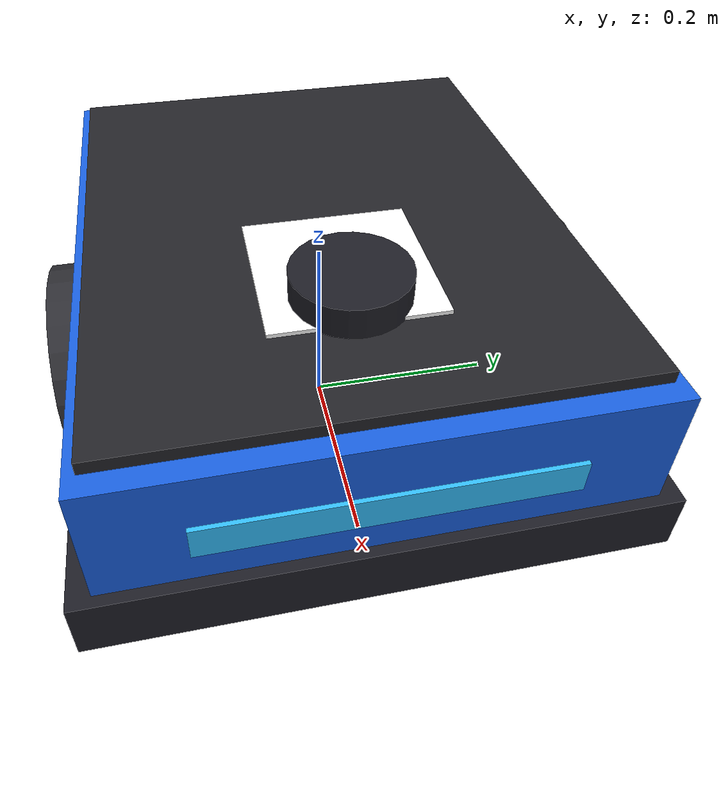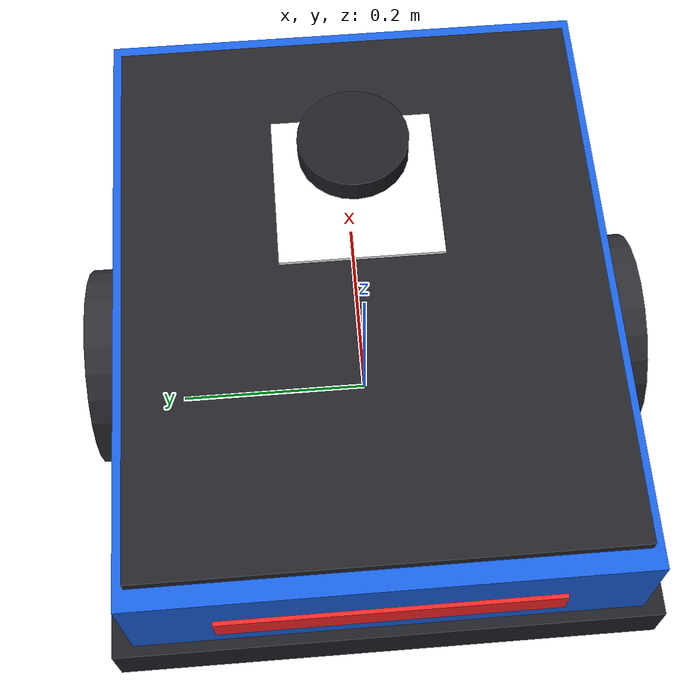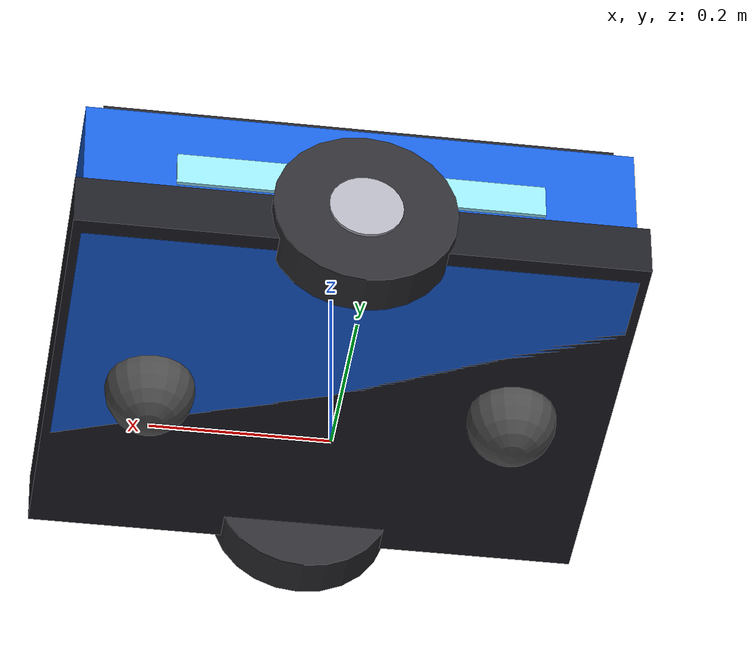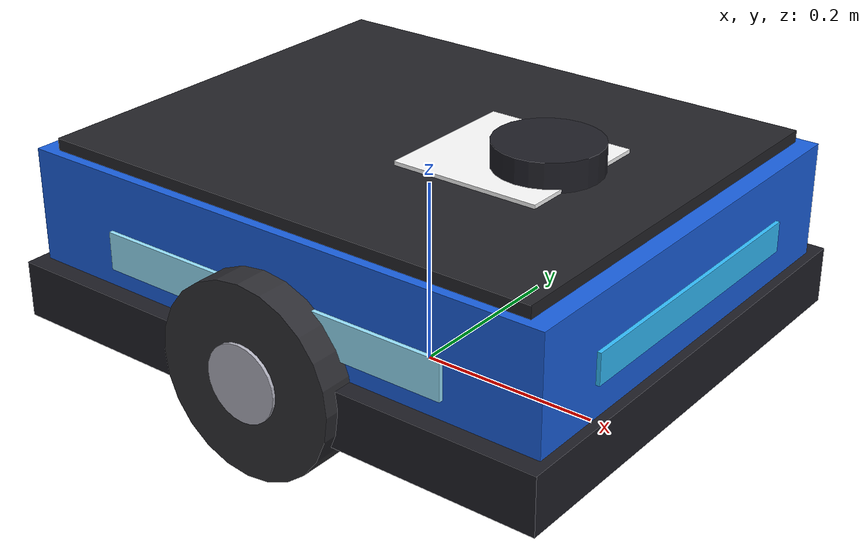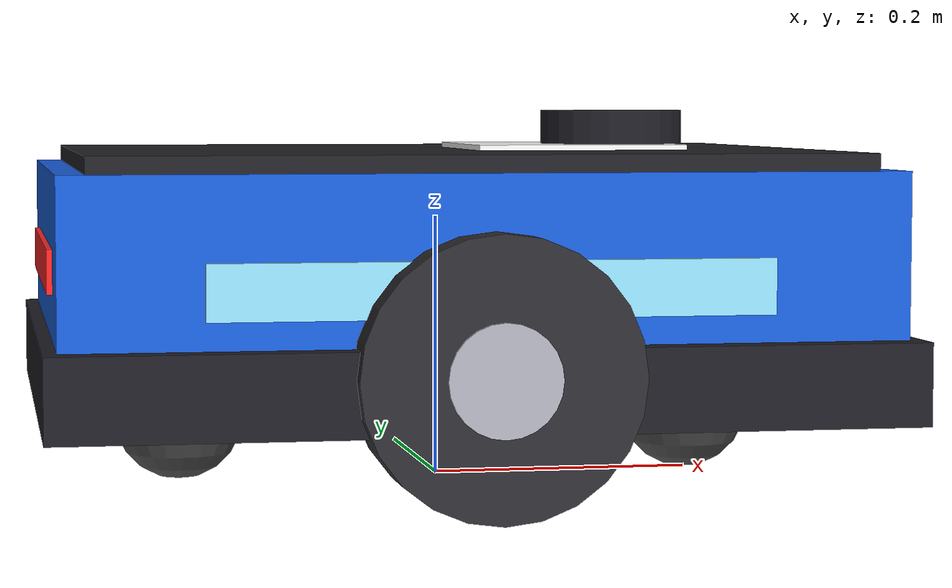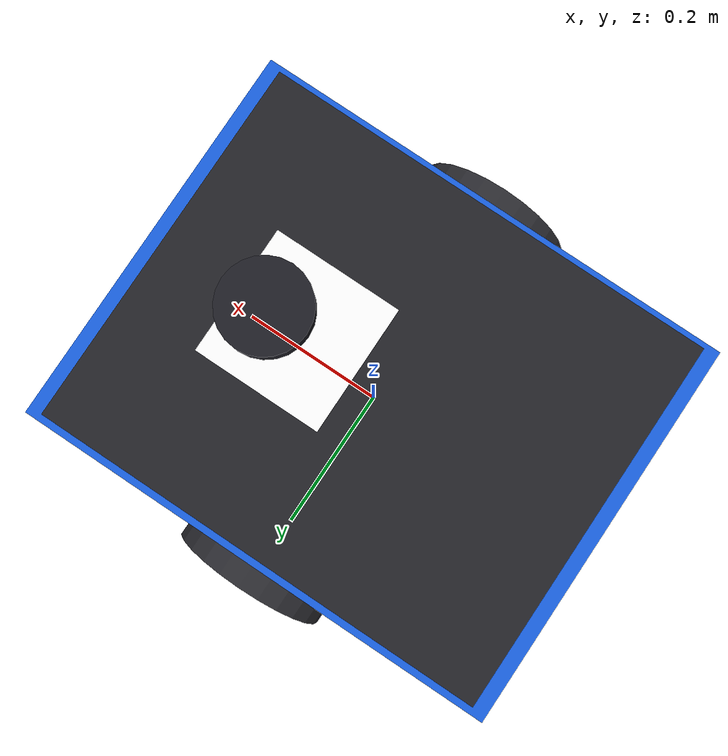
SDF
<?xml version="1.0"?>
<sdf version="1.9">
  <model name="amr_blue">
    <link name="base_link">
      <pose>0 0 0.15 0 0 0</pose>
      <inertial>
        <mass>15.0</mass>
        <inertia><ixx>0.3625</ixx><iyy>0.5</iyy><izz>0.7625</izz><ixy>0</ixy><ixz>0</ixz><iyz>0</iyz></inertia>
      </inertial>
      <collision name="chassis_collision">
        <geometry><box><size>0.60 0.50 0.20</size></box></geometry>
      </collision>

      <!-- Main Chassis Body — BLUE -->
      <visual name="chassis_main">
        <geometry><box><size>0.60 0.48 0.18</size></box></geometry>
        <material>
          <ambient>0.05 0.25 0.70 1.0</ambient>
          <diffuse>0.10 0.38 0.88 1.0</diffuse>
          <specular>0.4 0.4 0.5 1.0</specular>
        </material>
      </visual>

      <!-- Top Cargo Deck (Black Rubber) -->
      <visual name="top_deck">
        <pose>0 0 0.095 0 0 0</pose>
        <geometry><box><size>0.56 0.46 0.015</size></box></geometry>
        <material><ambient>0.10 0.10 0.12 1.0</ambient><diffuse>0.14 0.14 0.16 1.0</diffuse></material>
      </visual>

      <!-- Safety Bumper Skirt -->
      <visual name="bumper">
        <pose>0 0 -0.06 0 0 0</pose>
        <geometry><box><size>0.62 0.52 0.06</size></box></geometry>
        <material><ambient>0.08 0.08 0.10 1.0</ambient><diffuse>0.12 0.12 0.15 1.0</diffuse></material>
      </visual>

      <!-- Front Blue LED Status Bar -->
      <visual name="front_led">
        <pose>0.299 0 0.02 0 0 0</pose>
        <geometry><box><size>0.01 0.32 0.032</size></box></geometry>
        <material><ambient>0.0 0.6 1.0 1.0</ambient><diffuse>0.2 0.75 1.0 1.0</diffuse></material>
      </visual>

      <!-- Rear Red Brake LED -->
      <visual name="rear_led">
        <pose>-0.299 0 0.02 0 0 0</pose>
        <geometry><box><size>0.01 0.32 0.032</size></box></geometry>
        <material><ambient>0.9 0.1 0.1 1.0</ambient><diffuse>1.0 0.15 0.15 1.0</diffuse></material>
      </visual>

      <!-- Side Accent Stripes — Light Blue -->
      <visual name="stripe_left">
        <pose>0 0.242 0.01 0 0 0</pose>
        <geometry><box><size>0.40 0.005 0.04</size></box></geometry>
        <material><ambient>0.5 0.8 1.0 1.0</ambient><diffuse>0.6 0.9 1.0 1.0</diffuse></material>
      </visual>
      <visual name="stripe_right">
        <pose>0 -0.242 0.01 0 0 0</pose>
        <geometry><box><size>0.40 0.005 0.04</size></box></geometry>
        <material><ambient>0.5 0.8 1.0 1.0</ambient><diffuse>0.6 0.9 1.0 1.0</diffuse></material>
      </visual>

      <!-- "A" ID Marker on Top — White Square -->
      <visual name="id_marker">
        <pose>0.10 0 0.104 0 0 0</pose>
        <geometry><box><size>0.16 0.16 0.005</size></box></geometry>
        <material><ambient>1.0 1.0 1.0 1.0</ambient><diffuse>1.0 1.0 1.0 1.0</diffuse></material>
      </visual>

      <sensor name="imu_sensor" type="imu">
        <always_on>1</always_on><update_rate>50</update_rate>
        <visualize>false</visualize><topic>imu_blue</topic>
      </sensor>
      <sensor name="chassis_contact_sensor" type="contact">
        <always_on>1</always_on><update_rate>30</update_rate>
        <contact><collision>chassis_collision</collision></contact>
        <topic>amr_blue_contact</topic>
      </sensor>
    </link>

    <link name="left_wheel">
      <pose>0 0.25 0.10 -1.57079632679 0 0</pose>
      <inertial><mass>1.5</mass><inertia><ixx>0.00406</ixx><iyy>0.00406</iyy><izz>0.0075</izz><ixy>0</ixy><ixz>0</ixz><iyz>0</iyz></inertia></inertial>
      <collision name="collision"><geometry><cylinder><radius>0.10</radius><length>0.05</length></cylinder></geometry><surface><friction><ode><mu>1.2</mu><mu2>1.2</mu2></ode></friction></surface></collision>
      <visual name="visual"><geometry><cylinder><radius>0.10</radius><length>0.05</length></cylinder></geometry><material><ambient>0.12 0.12 0.14 1.0</ambient><diffuse>0.18 0.18 0.20 1.0</diffuse></material></visual>
      <visual name="hubcap"><pose>0 0 0.026 0 0 0</pose><geometry><cylinder><radius>0.04</radius><length>0.005</length></cylinder></geometry><material><ambient>0.6 0.6 0.65 1.0</ambient><diffuse>0.7 0.7 0.75 1.0</diffuse></material></visual>
    </link>
    <link name="right_wheel">
      <pose>0 -0.25 0.10 -1.57079632679 0 0</pose>
      <inertial><mass>1.5</mass><inertia><ixx>0.00406</ixx><iyy>0.00406</iyy><izz>0.0075</izz><ixy>0</ixy><ixz>0</ixz><iyz>0</iyz></inertia></inertial>
      <collision name="collision"><geometry><cylinder><radius>0.10</radius><length>0.05</length></cylinder></geometry><surface><friction><ode><mu>1.2</mu><mu2>1.2</mu2></ode></friction></surface></collision>
      <visual name="visual"><geometry><cylinder><radius>0.10</radius><length>0.05</length></cylinder></geometry><material><ambient>0.12 0.12 0.14 1.0</ambient><diffuse>0.18 0.18 0.20 1.0</diffuse></material></visual>
      <visual name="hubcap"><pose>0 0 -0.026 0 0 0</pose><geometry><cylinder><radius>0.04</radius><length>0.005</length></cylinder></geometry><material><ambient>0.6 0.6 0.65 1.0</ambient><diffuse>0.7 0.7 0.75 1.0</diffuse></material></visual>
    </link>

    <joint name="left_wheel_joint" type="revolute">
      <parent>base_link</parent><child>left_wheel</child>
      <axis><xyz>0 0 1</xyz><limit><lower>-1e16</lower><upper>1e16</upper></limit></axis>
    </joint>
    <joint name="right_wheel_joint" type="revolute">
      <parent>base_link</parent><child>right_wheel</child>
      <axis><xyz>0 0 1</xyz><limit><lower>-1e16</lower><upper>1e16</upper></limit></axis>
    </joint>

    <!-- Dual Casters for 4-Point Pitch/Roll Stability -->
    <link name="caster_rear">
      <pose>-0.20 0 0.05 0 0 0</pose>
      <inertial><mass>0.25</mass><inertia><ixx>0.00025</ixx><iyy>0.00025</iyy><izz>0.00025</izz><ixy>0</ixy><ixz>0</ixz><iyz>0</iyz></inertia></inertial>
      <collision name="collision"><geometry><sphere><radius>0.05</radius></sphere></geometry><surface><friction><ode><mu>0.01</mu><mu2>0.01</mu2><slip1>1.0</slip1><slip2>1.0</slip2></ode></friction></surface></collision>
      <visual name="visual"><geometry><sphere><radius>0.05</radius></sphere></geometry><material><ambient>0.2 0.2 0.2 1.0</ambient><diffuse>0.3 0.3 0.3 1.0</diffuse></material></visual>
    </link>
    <joint name="caster_rear_joint" type="ball"><parent>base_link</parent><child>caster_rear</child></joint>

    <link name="caster_front">
      <pose>0.20 0 0.05 0 0 0</pose>
      <inertial><mass>0.25</mass><inertia><ixx>0.00025</ixx><iyy>0.00025</iyy><izz>0.00025</izz><ixy>0</ixy><ixz>0</ixz><iyz>0</iyz></inertia></inertial>
      <collision name="collision"><geometry><sphere><radius>0.05</radius></sphere></geometry><surface><friction><ode><mu>0.01</mu><mu2>0.01</mu2><slip1>1.0</slip1><slip2>1.0</slip2></ode></friction></surface></collision>
      <visual name="visual"><geometry><sphere><radius>0.05</radius></sphere></geometry><material><ambient>0.2 0.2 0.2 1.0</ambient><diffuse>0.3 0.3 0.3 1.0</diffuse></material></visual>
    </link>
    <joint name="caster_front_joint" type="ball"><parent>base_link</parent><child>caster_front</child></joint>

    <!-- LiDAR Link -->
    <link name="lidar_link">
      <pose>0.14 0 0.26 0 0 0</pose>
      <inertial><mass>0.2</mass><inertia><ixx>0.0001</ixx><iyy>0.0001</iyy><izz>0.0001</izz><ixy>0</ixy><ixz>0</ixz><iyz>0</iyz></inertia></inertial>
      <visual name="housing"><geometry><cylinder><radius>0.055</radius><length>0.045</length></cylinder></geometry><material><ambient>0.08 0.08 0.10 1.0</ambient><diffuse>0.12 0.12 0.15 1.0</diffuse></material></visual>
      <visual name="scanner_eye"><pose>0 0 0.01 0 0 0</pose><geometry><cylinder><radius>0.045</radius><length>0.02</length></cylinder></geometry><material><ambient>0.0 0.7 0.9 1.0</ambient><diffuse>0.0 0.85 1.0 1.0</diffuse></material></visual>
      <collision name="lidar_collision"><geometry><cylinder><radius>0.055</radius><length>0.045</length></cylinder></geometry></collision>
      <sensor name="lidar_2d" type="gpu_lidar">
        <pose>0 0 0 0 0 0</pose>
        <always_on>1</always_on><update_rate>15</update_rate><visualize>true</visualize>
        <ray>
          <scan><horizontal><samples>720</samples><resolution>1</resolution><min_angle>-3.14159265</min_angle><max_angle>3.14159265</max_angle></horizontal></scan>
          <range><min>0.10</min><max>10.0</max><resolution>0.01</resolution></range>
          <noise><type>gaussian</type><mean>0.0</mean><stddev>0.01</stddev></noise>
        </ray>
        <topic>amr_blue/scan</topic>
      </sensor>
    </link>
    <joint name="lidar_joint" type="fixed"><parent>base_link</parent><child>lidar_link</child></joint>

    <plugin filename="gz-sim-diff-drive-system" name="gz::sim::systems::DiffDrive">
      <left_joint>left_wheel_joint</left_joint>
      <right_joint>right_wheel_joint</right_joint>
      <wheel_separation>0.50</wheel_separation>
      <wheel_radius>0.10</wheel_radius>
      <odom_publish_frequency>20</odom_publish_frequency>
      <topic>amr_blue/cmd_vel</topic>
      <odom_topic>amr_blue/odom</odom_topic>
      <tf_topic>amr_blue/tf</tf_topic>
      <frame_id>amr_blue/odom</frame_id>
      <child_frame_id>amr_blue/base_link</child_frame_id>
      <max_linear_velocity>1.2</max_linear_velocity>
      <min_linear_velocity>-1.2</min_linear_velocity>
      <max_angular_velocity>2.0</max_angular_velocity>
      <min_angular_velocity>-2.0</min_angular_velocity>
    </plugin>
  </model>
</sdf>
